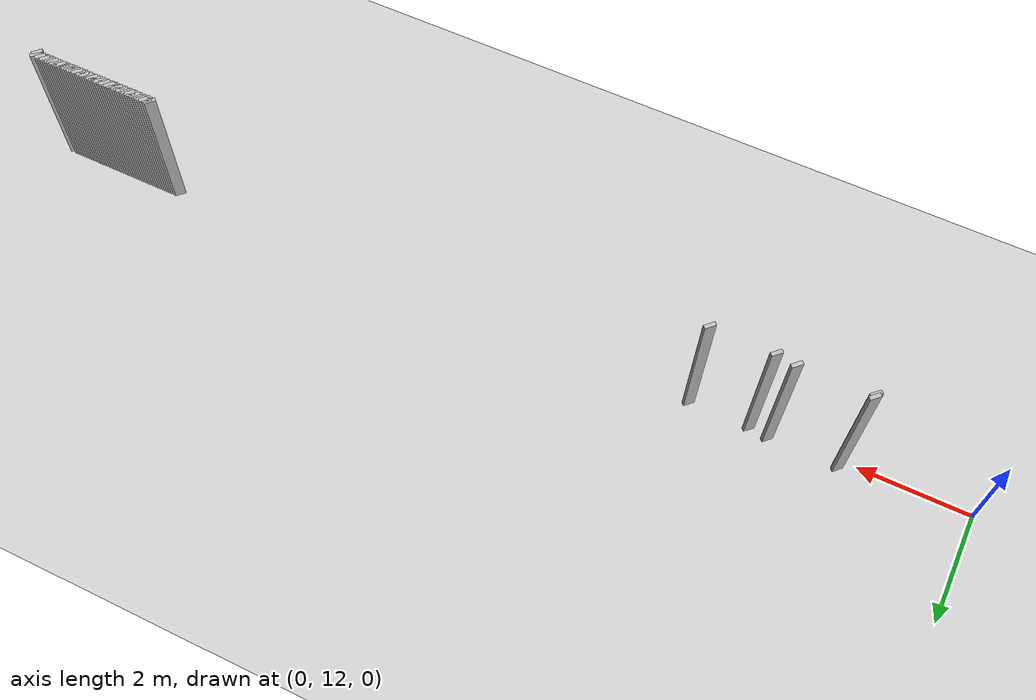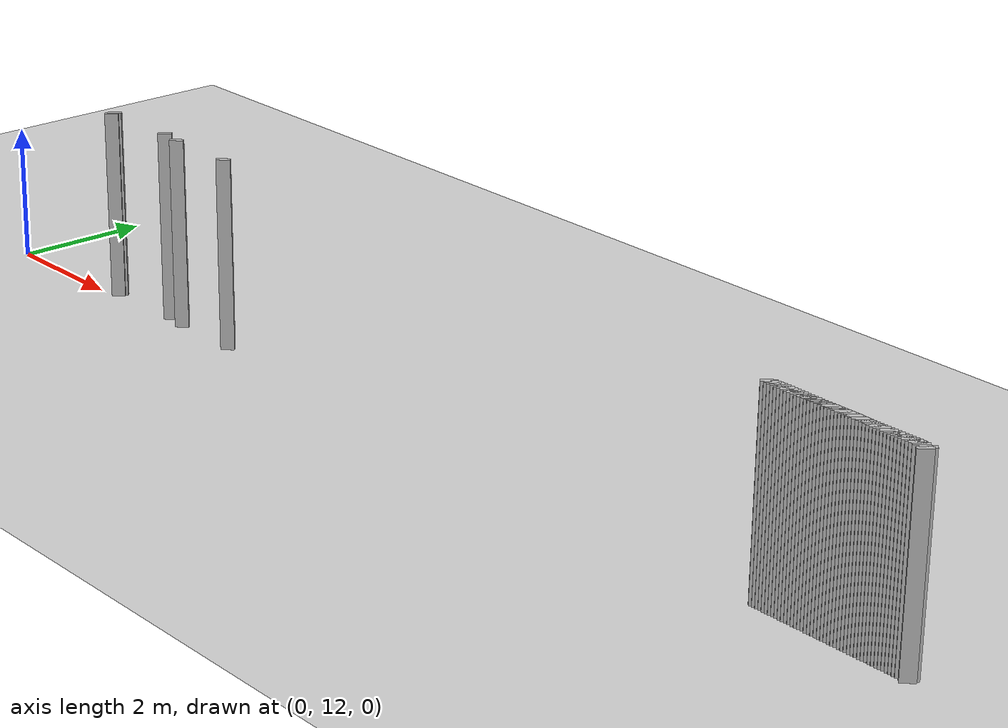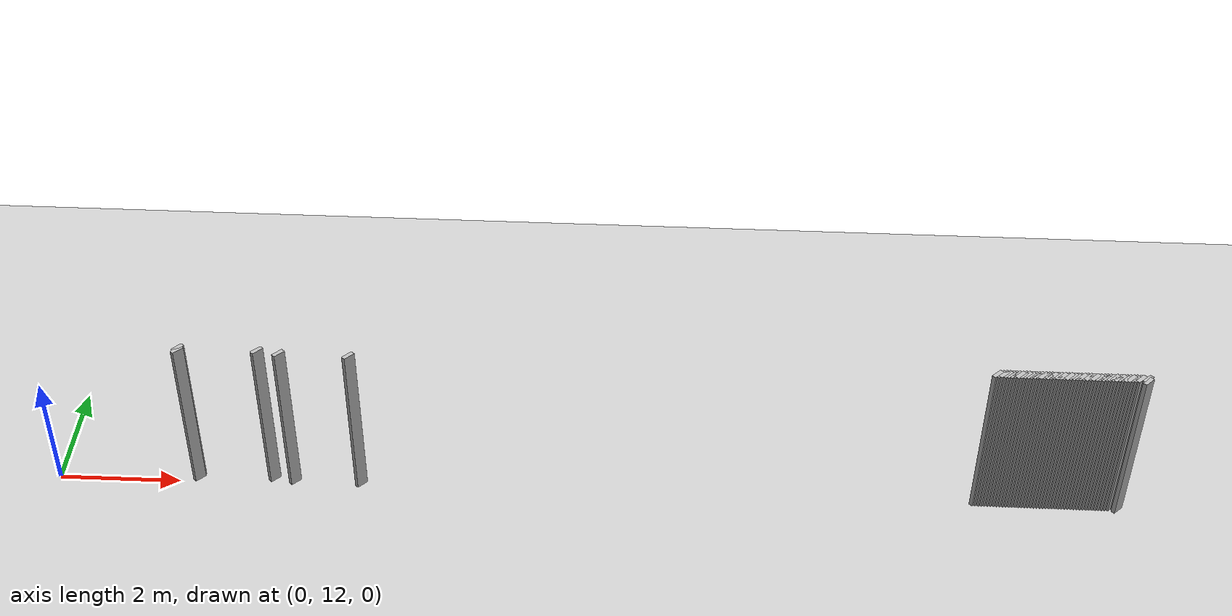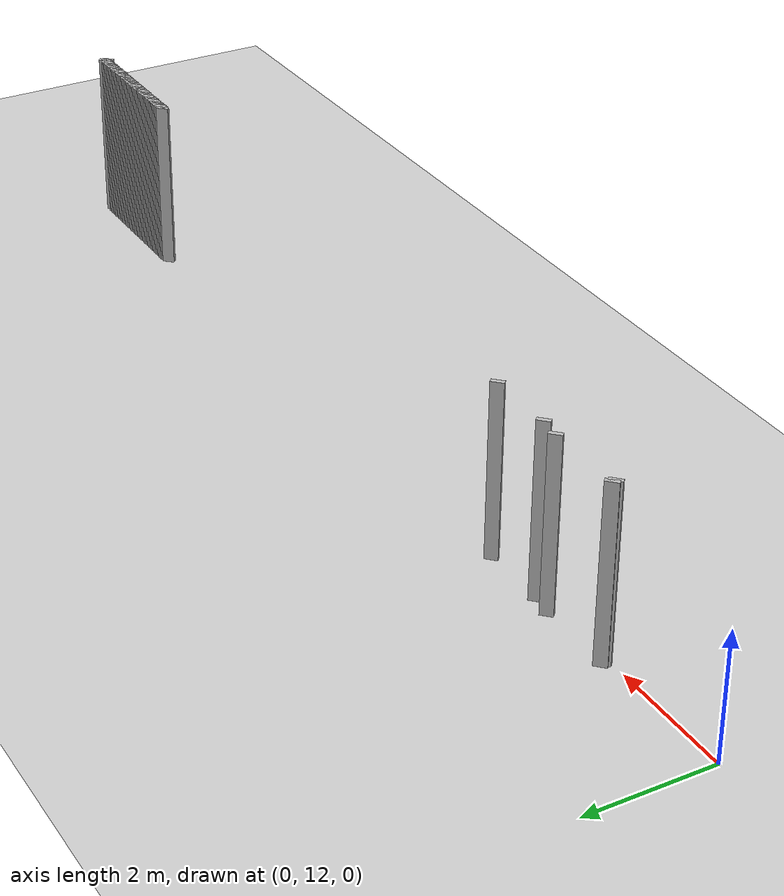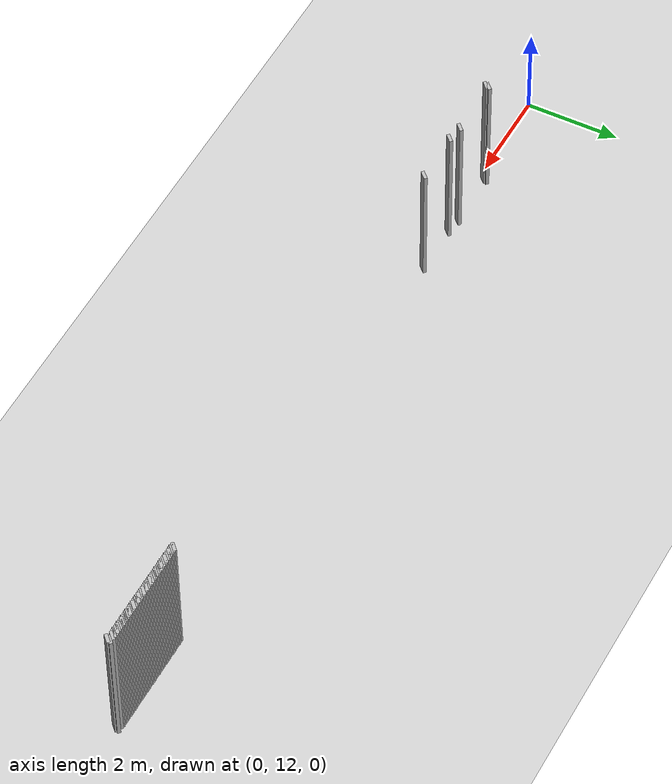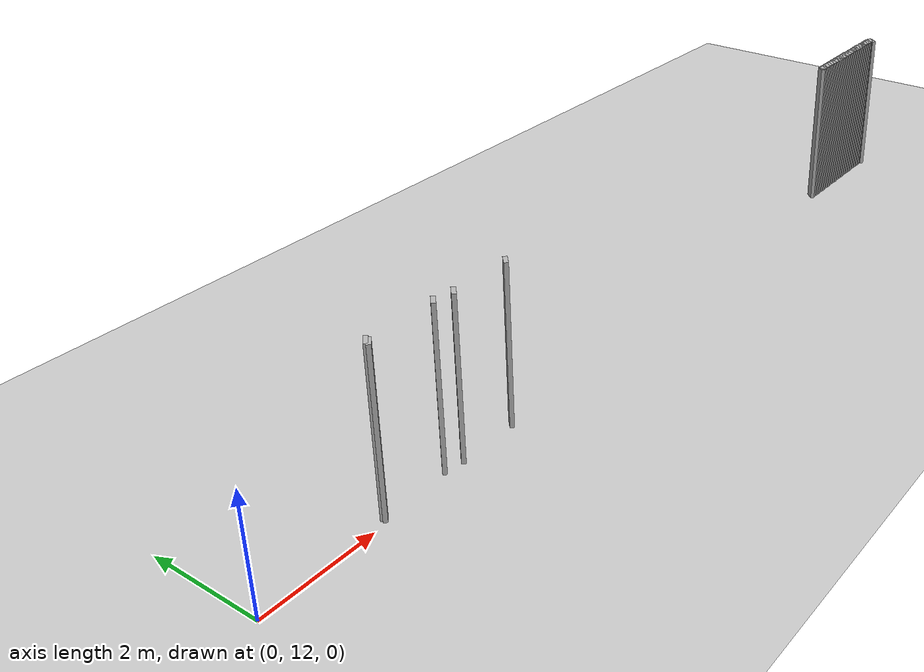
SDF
<sdf version="1.5">
 <world name="default">
  <include><uri>model://ground_plane</uri></include>
  <include><uri>model://sun</uri></include>
  <model name="grey_wall_1057">
   <static>1</static>
   <link name="link">
    <pose>15.100000000000001 12.200000000000001  1.4 0 0 -0.7853981633974483</pose>
    <collision name="collision">
     <geometry><box><size>0.07071067811865576 .2  2.8</size></box></geometry>
    </collision>
    <visual name="visual">
     <cast_shadows>0</cast_shadows>
     <geometry><box><size>0.07071067811865576 .2  2.8</size></box></geometry>
    </visual>
   </link>
  </model>
  <model name="grey_wall_1058">
   <static>1</static>
   <link name="link">
    <pose>15.15 12.200000000000001  1.4 0 0 -0.7853981633974483</pose>
    <collision name="collision">
     <geometry><box><size>0.07071067811865576 .2  2.8</size></box></geometry>
    </collision>
    <visual name="visual">
     <cast_shadows>0</cast_shadows>
     <geometry><box><size>0.07071067811865576 .2  2.8</size></box></geometry>
    </visual>
   </link>
  </model>
  <model name="grey_wall_1059">
   <static>1</static>
   <link name="link">
    <pose>15.200000000000001 12.200000000000001  1.4 0 0 -0.7853981633974483</pose>
    <collision name="collision">
     <geometry><box><size>0.07071067811865576 .2  2.8</size></box></geometry>
    </collision>
    <visual name="visual">
     <cast_shadows>0</cast_shadows>
     <geometry><box><size>0.07071067811865576 .2  2.8</size></box></geometry>
    </visual>
   </link>
  </model>
  <model name="grey_wall_1060">
   <static>1</static>
   <link name="link">
    <pose>15.25 12.200000000000001  1.4 0 0 -0.7853981633974483</pose>
    <collision name="collision">
     <geometry><box><size>0.07071067811865576 .2  2.8</size></box></geometry>
    </collision>
    <visual name="visual">
     <cast_shadows>0</cast_shadows>
     <geometry><box><size>0.07071067811865576 .2  2.8</size></box></geometry>
    </visual>
   </link>
  </model>
  <model name="grey_wall_1061">
   <static>1</static>
   <link name="link">
    <pose>15.3 12.200000000000001  1.4 0 0 -0.7853981633974483</pose>
    <collision name="collision">
     <geometry><box><size>0.07071067811865576 .2  2.8</size></box></geometry>
    </collision>
    <visual name="visual">
     <cast_shadows>0</cast_shadows>
     <geometry><box><size>0.07071067811865576 .2  2.8</size></box></geometry>
    </visual>
   </link>
  </model>
  <model name="grey_wall_1062">
   <static>1</static>
   <link name="link">
    <pose>15.350000000000001 12.200000000000001  1.4 0 0 -0.7853981633974483</pose>
    <collision name="collision">
     <geometry><box><size>0.07071067811865576 .2  2.8</size></box></geometry>
    </collision>
    <visual name="visual">
     <cast_shadows>0</cast_shadows>
     <geometry><box><size>0.07071067811865576 .2  2.8</size></box></geometry>
    </visual>
   </link>
  </model>
  <model name="grey_wall_1063">
   <static>1</static>
   <link name="link">
    <pose>15.4 12.200000000000001  1.4 0 0 -0.7853981633974483</pose>
    <collision name="collision">
     <geometry><box><size>0.07071067811865576 .2  2.8</size></box></geometry>
    </collision>
    <visual name="visual">
     <cast_shadows>0</cast_shadows>
     <geometry><box><size>0.07071067811865576 .2  2.8</size></box></geometry>
    </visual>
   </link>
  </model>
  <model name="grey_wall_1064">
   <static>1</static>
   <link name="link">
    <pose>15.450000000000001 12.200000000000001  1.4 0 0 -0.7853981633974483</pose>
    <collision name="collision">
     <geometry><box><size>0.07071067811865576 .2  2.8</size></box></geometry>
    </collision>
    <visual name="visual">
     <cast_shadows>0</cast_shadows>
     <geometry><box><size>0.07071067811865576 .2  2.8</size></box></geometry>
    </visual>
   </link>
  </model>
  <model name="grey_wall_1065">
   <static>1</static>
   <link name="link">
    <pose>15.5 12.200000000000001  1.4 0 0 -0.7853981633974483</pose>
    <collision name="collision">
     <geometry><box><size>0.07071067811865576 .2  2.8</size></box></geometry>
    </collision>
    <visual name="visual">
     <cast_shadows>0</cast_shadows>
     <geometry><box><size>0.07071067811865576 .2  2.8</size></box></geometry>
    </visual>
   </link>
  </model>
  <model name="grey_wall_1066">
   <static>1</static>
   <link name="link">
    <pose>15.55 12.200000000000001  1.4 0 0 -0.7853981633974483</pose>
    <collision name="collision">
     <geometry><box><size>0.07071067811865576 .2  2.8</size></box></geometry>
    </collision>
    <visual name="visual">
     <cast_shadows>0</cast_shadows>
     <geometry><box><size>0.07071067811865576 .2  2.8</size></box></geometry>
    </visual>
   </link>
  </model>
  <model name="grey_wall_1067">
   <static>1</static>
   <link name="link">
    <pose>15.600000000000001 12.200000000000001  1.4 0 0 -0.7853981633974483</pose>
    <collision name="collision">
     <geometry><box><size>0.07071067811865576 .2  2.8</size></box></geometry>
    </collision>
    <visual name="visual">
     <cast_shadows>0</cast_shadows>
     <geometry><box><size>0.07071067811865576 .2  2.8</size></box></geometry>
    </visual>
   </link>
  </model>
  <model name="grey_wall_1068">
   <static>1</static>
   <link name="link">
    <pose>15.65 12.200000000000001  1.4 0 0 -0.7853981633974483</pose>
    <collision name="collision">
     <geometry><box><size>0.07071067811865576 .2  2.8</size></box></geometry>
    </collision>
    <visual name="visual">
     <cast_shadows>0</cast_shadows>
     <geometry><box><size>0.07071067811865576 .2  2.8</size></box></geometry>
    </visual>
   </link>
  </model>
  <model name="grey_wall_1069">
   <static>1</static>
   <link name="link">
    <pose>15.700000000000001 12.200000000000001  1.4 0 0 -0.7853981633974483</pose>
    <collision name="collision">
     <geometry><box><size>0.07071067811865576 .2  2.8</size></box></geometry>
    </collision>
    <visual name="visual">
     <cast_shadows>0</cast_shadows>
     <geometry><box><size>0.07071067811865576 .2  2.8</size></box></geometry>
    </visual>
   </link>
  </model>
  <model name="grey_wall_1070">
   <static>1</static>
   <link name="link">
    <pose>15.75 12.200000000000001  1.4 0 0 -0.7853981633974483</pose>
    <collision name="collision">
     <geometry><box><size>0.07071067811865576 .2  2.8</size></box></geometry>
    </collision>
    <visual name="visual">
     <cast_shadows>0</cast_shadows>
     <geometry><box><size>0.07071067811865576 .2  2.8</size></box></geometry>
    </visual>
   </link>
  </model>
  <model name="grey_wall_1071">
   <static>1</static>
   <link name="link">
    <pose>15.8 12.200000000000001  1.4 0 0 -0.7853981633974483</pose>
    <collision name="collision">
     <geometry><box><size>0.07071067811865576 .2  2.8</size></box></geometry>
    </collision>
    <visual name="visual">
     <cast_shadows>0</cast_shadows>
     <geometry><box><size>0.07071067811865576 .2  2.8</size></box></geometry>
    </visual>
   </link>
  </model>
  <model name="grey_wall_1072">
   <static>1</static>
   <link name="link">
    <pose>15.850000000000001 12.200000000000001  1.4 0 0 -0.7853981633974483</pose>
    <collision name="collision">
     <geometry><box><size>0.07071067811865576 .2  2.8</size></box></geometry>
    </collision>
    <visual name="visual">
     <cast_shadows>0</cast_shadows>
     <geometry><box><size>0.07071067811865576 .2  2.8</size></box></geometry>
    </visual>
   </link>
  </model>
  <model name="grey_wall_1073">
   <static>1</static>
   <link name="link">
    <pose>15.9 12.200000000000001  1.4 0 0 -0.7853981633974483</pose>
    <collision name="collision">
     <geometry><box><size>0.07071067811865576 .2  2.8</size></box></geometry>
    </collision>
    <visual name="visual">
     <cast_shadows>0</cast_shadows>
     <geometry><box><size>0.07071067811865576 .2  2.8</size></box></geometry>
    </visual>
   </link>
  </model>
  <model name="grey_wall_1074">
   <static>1</static>
   <link name="link">
    <pose>15.950000000000001 12.200000000000001  1.4 0 0 -0.7853981633974483</pose>
    <collision name="collision">
     <geometry><box><size>0.07071067811865576 .2  2.8</size></box></geometry>
    </collision>
    <visual name="visual">
     <cast_shadows>0</cast_shadows>
     <geometry><box><size>0.07071067811865576 .2  2.8</size></box></geometry>
    </visual>
   </link>
  </model>
  <model name="grey_wall_1075">
   <static>1</static>
   <link name="link">
    <pose>16.0 12.200000000000001  1.4 0 0 -0.785398163397466</pose>
    <collision name="collision">
     <geometry><box><size>0.0707106781186545 .2  2.8</size></box></geometry>
    </collision>
    <visual name="visual">
     <cast_shadows>0</cast_shadows>
     <geometry><box><size>0.0707106781186545 .2  2.8</size></box></geometry>
    </visual>
   </link>
  </model>
  <model name="grey_wall_1076">
   <static>1</static>
   <link name="link">
    <pose>16.05 12.200000000000001  1.4 0 0 -0.7853981633974838</pose>
    <collision name="collision">
     <geometry><box><size>0.07071067811865325 .2  2.8</size></box></geometry>
    </collision>
    <visual name="visual">
     <cast_shadows>0</cast_shadows>
     <geometry><box><size>0.07071067811865325 .2  2.8</size></box></geometry>
    </visual>
   </link>
  </model>
  <model name="grey_wall_1077">
   <static>1</static>
   <link name="link">
    <pose>16.1 12.200000000000001  1.4 0 0 -0.7853981633974838</pose>
    <collision name="collision">
     <geometry><box><size>0.07071067811865325 .2  2.8</size></box></geometry>
    </collision>
    <visual name="visual">
     <cast_shadows>0</cast_shadows>
     <geometry><box><size>0.07071067811865325 .2  2.8</size></box></geometry>
    </visual>
   </link>
  </model>
  <model name="grey_wall_1078">
   <static>1</static>
   <link name="link">
    <pose>16.150000000000002 12.200000000000001  1.4 0 0 -0.7853981633974838</pose>
    <collision name="collision">
     <geometry><box><size>0.07071067811865325 .2  2.8</size></box></geometry>
    </collision>
    <visual name="visual">
     <cast_shadows>0</cast_shadows>
     <geometry><box><size>0.07071067811865325 .2  2.8</size></box></geometry>
    </visual>
   </link>
  </model>
  <model name="grey_wall_1079">
   <static>1</static>
   <link name="link">
    <pose>16.2 12.200000000000001  1.4 0 0 -0.7853981633974838</pose>
    <collision name="collision">
     <geometry><box><size>0.07071067811865325 .2  2.8</size></box></geometry>
    </collision>
    <visual name="visual">
     <cast_shadows>0</cast_shadows>
     <geometry><box><size>0.07071067811865325 .2  2.8</size></box></geometry>
    </visual>
   </link>
  </model>
  <model name="grey_wall_1080">
   <static>1</static>
   <link name="link">
    <pose>16.25 12.200000000000001  1.4 0 0 -0.7853981633974838</pose>
    <collision name="collision">
     <geometry><box><size>0.07071067811865325 .2  2.8</size></box></geometry>
    </collision>
    <visual name="visual">
     <cast_shadows>0</cast_shadows>
     <geometry><box><size>0.07071067811865325 .2  2.8</size></box></geometry>
    </visual>
   </link>
  </model>
  <model name="grey_wall_1081">
   <static>1</static>
   <link name="link">
    <pose>16.3 12.200000000000001  1.4 0 0 -0.7853981633974838</pose>
    <collision name="collision">
     <geometry><box><size>0.07071067811865325 .2  2.8</size></box></geometry>
    </collision>
    <visual name="visual">
     <cast_shadows>0</cast_shadows>
     <geometry><box><size>0.07071067811865325 .2  2.8</size></box></geometry>
    </visual>
   </link>
  </model>
  <model name="grey_wall_1082">
   <static>1</static>
   <link name="link">
    <pose>16.35 12.200000000000001  1.4 0 0 -0.7853981633974838</pose>
    <collision name="collision">
     <geometry><box><size>0.07071067811865325 .2  2.8</size></box></geometry>
    </collision>
    <visual name="visual">
     <cast_shadows>0</cast_shadows>
     <geometry><box><size>0.07071067811865325 .2  2.8</size></box></geometry>
    </visual>
   </link>
  </model>
  <model name="grey_wall_1083">
   <static>1</static>
   <link name="link">
    <pose>16.400000000000002 12.200000000000001  1.4 0 0 -0.7853981633974838</pose>
    <collision name="collision">
     <geometry><box><size>0.07071067811865325 .2  2.8</size></box></geometry>
    </collision>
    <visual name="visual">
     <cast_shadows>0</cast_shadows>
     <geometry><box><size>0.07071067811865325 .2  2.8</size></box></geometry>
    </visual>
   </link>
  </model>
  <model name="grey_wall_1084">
   <static>1</static>
   <link name="link">
    <pose>16.45 12.200000000000001  1.4 0 0 -0.7853981633974838</pose>
    <collision name="collision">
     <geometry><box><size>0.07071067811865325 .2  2.8</size></box></geometry>
    </collision>
    <visual name="visual">
     <cast_shadows>0</cast_shadows>
     <geometry><box><size>0.07071067811865325 .2  2.8</size></box></geometry>
    </visual>
   </link>
  </model>
  <model name="grey_wall_1085">
   <static>1</static>
   <link name="link">
    <pose>16.5 12.200000000000001  1.4 0 0 -0.7853981633974838</pose>
    <collision name="collision">
     <geometry><box><size>0.07071067811865325 .2  2.8</size></box></geometry>
    </collision>
    <visual name="visual">
     <cast_shadows>0</cast_shadows>
     <geometry><box><size>0.07071067811865325 .2  2.8</size></box></geometry>
    </visual>
   </link>
  </model>
  <model name="grey_wall_1086">
   <static>1</static>
   <link name="link">
    <pose>16.55 12.200000000000001  1.4 0 0 -0.7853981633974838</pose>
    <collision name="collision">
     <geometry><box><size>0.07071067811865325 .2  2.8</size></box></geometry>
    </collision>
    <visual name="visual">
     <cast_shadows>0</cast_shadows>
     <geometry><box><size>0.07071067811865325 .2  2.8</size></box></geometry>
    </visual>
   </link>
  </model>
  <model name="grey_wall_1087">
   <static>1</static>
   <link name="link">
    <pose>16.6 12.200000000000001  1.4 0 0 -0.7853981633974838</pose>
    <collision name="collision">
     <geometry><box><size>0.07071067811865325 .2  2.8</size></box></geometry>
    </collision>
    <visual name="visual">
     <cast_shadows>0</cast_shadows>
     <geometry><box><size>0.07071067811865325 .2  2.8</size></box></geometry>
    </visual>
   </link>
  </model>
  <model name="grey_wall_1088">
   <static>1</static>
   <link name="link">
    <pose>16.650000000000002 12.200000000000001  1.4 0 0 -0.7853981633974838</pose>
    <collision name="collision">
     <geometry><box><size>0.07071067811865325 .2  2.8</size></box></geometry>
    </collision>
    <visual name="visual">
     <cast_shadows>0</cast_shadows>
     <geometry><box><size>0.07071067811865325 .2  2.8</size></box></geometry>
    </visual>
   </link>
  </model>
  <model name="grey_wall_1089">
   <static>1</static>
   <link name="link">
    <pose>16.7 12.200000000000001  1.4 0 0 -0.7853981633974838</pose>
    <collision name="collision">
     <geometry><box><size>0.07071067811865325 .2  2.8</size></box></geometry>
    </collision>
    <visual name="visual">
     <cast_shadows>0</cast_shadows>
     <geometry><box><size>0.07071067811865325 .2  2.8</size></box></geometry>
    </visual>
   </link>
  </model>
  <model name="grey_wall_1090">
   <static>1</static>
   <link name="link">
    <pose>16.75 12.200000000000001  1.4 0 0 -0.7853981633974838</pose>
    <collision name="collision">
     <geometry><box><size>0.07071067811865325 .2  2.8</size></box></geometry>
    </collision>
    <visual name="visual">
     <cast_shadows>0</cast_shadows>
     <geometry><box><size>0.07071067811865325 .2  2.8</size></box></geometry>
    </visual>
   </link>
  </model>
  <model name="grey_wall_1091">
   <static>1</static>
   <link name="link">
    <pose>16.8 12.200000000000001  1.4 0 0 -0.7853981633974838</pose>
    <collision name="collision">
     <geometry><box><size>0.07071067811865325 .2  2.8</size></box></geometry>
    </collision>
    <visual name="visual">
     <cast_shadows>0</cast_shadows>
     <geometry><box><size>0.07071067811865325 .2  2.8</size></box></geometry>
    </visual>
   </link>
  </model>
  <model name="grey_wall_1092">
   <static>1</static>
   <link name="link">
    <pose>16.85 12.200000000000001  1.4 0 0 -0.7853981633974838</pose>
    <collision name="collision">
     <geometry><box><size>0.07071067811865325 .2  2.8</size></box></geometry>
    </collision>
    <visual name="visual">
     <cast_shadows>0</cast_shadows>
     <geometry><box><size>0.07071067811865325 .2  2.8</size></box></geometry>
    </visual>
   </link>
  </model>
  <model name="grey_wall_1093">
   <static>1</static>
   <link name="link">
    <pose>16.900000000000002 12.200000000000001  1.4 0 0 -0.7853981633974838</pose>
    <collision name="collision">
     <geometry><box><size>0.07071067811865325 .2  2.8</size></box></geometry>
    </collision>
    <visual name="visual">
     <cast_shadows>0</cast_shadows>
     <geometry><box><size>0.07071067811865325 .2  2.8</size></box></geometry>
    </visual>
   </link>
  </model>
  <model name="grey_wall_1094">
   <static>1</static>
   <link name="link">
    <pose>16.95 12.200000000000001  1.4 0 0 -0.7853981633974838</pose>
    <collision name="collision">
     <geometry><box><size>0.07071067811865325 .2  2.8</size></box></geometry>
    </collision>
    <visual name="visual">
     <cast_shadows>0</cast_shadows>
     <geometry><box><size>0.07071067811865325 .2  2.8</size></box></geometry>
    </visual>
   </link>
  </model>
  <model name="grey_wall_1095">
   <static>1</static>
   <link name="link">
    <pose>17.0 12.200000000000001  1.4 0 0 -0.7853981633974838</pose>
    <collision name="collision">
     <geometry><box><size>0.07071067811865325 .2  2.8</size></box></geometry>
    </collision>
    <visual name="visual">
     <cast_shadows>0</cast_shadows>
     <geometry><box><size>0.07071067811865325 .2  2.8</size></box></geometry>
    </visual>
   </link>
  </model>
  <model name="grey_wall_1096">
   <static>1</static>
   <link name="link">
    <pose>17.05 12.200000000000001  1.4 0 0 -0.7853981633974838</pose>
    <collision name="collision">
     <geometry><box><size>0.07071067811865325 .2  2.8</size></box></geometry>
    </collision>
    <visual name="visual">
     <cast_shadows>0</cast_shadows>
     <geometry><box><size>0.07071067811865325 .2  2.8</size></box></geometry>
    </visual>
   </link>
  </model>
  <model name="grey_wall_1097">
   <static>1</static>
   <link name="link">
    <pose>17.1 12.200000000000001  1.4 0 0 -0.7853981633974838</pose>
    <collision name="collision">
     <geometry><box><size>0.07071067811865325 .2  2.8</size></box></geometry>
    </collision>
    <visual name="visual">
     <cast_shadows>0</cast_shadows>
     <geometry><box><size>0.07071067811865325 .2  2.8</size></box></geometry>
    </visual>
   </link>
  </model>
  <model name="grey_wall_1098">
   <static>1</static>
   <link name="link">
    <pose>17.150000000000002 12.200000000000001  1.4 0 0 -0.7853981633974838</pose>
    <collision name="collision">
     <geometry><box><size>0.07071067811865325 .2  2.8</size></box></geometry>
    </collision>
    <visual name="visual">
     <cast_shadows>0</cast_shadows>
     <geometry><box><size>0.07071067811865325 .2  2.8</size></box></geometry>
    </visual>
   </link>
  </model>
  <model name="grey_wall_1099">
   <static>1</static>
   <link name="link">
    <pose>17.2 12.200000000000001  1.4 0 0 -0.7853981633974838</pose>
    <collision name="collision">
     <geometry><box><size>0.07071067811865325 .2  2.8</size></box></geometry>
    </collision>
    <visual name="visual">
     <cast_shadows>0</cast_shadows>
     <geometry><box><size>0.07071067811865325 .2  2.8</size></box></geometry>
    </visual>
   </link>
  </model>
  <model name="grey_wall_1100">
   <static>1</static>
   <link name="link">
    <pose>17.25 12.200000000000001  1.4 0 0 -0.7853981633974838</pose>
    <collision name="collision">
     <geometry><box><size>0.07071067811865325 .2  2.8</size></box></geometry>
    </collision>
    <visual name="visual">
     <cast_shadows>0</cast_shadows>
     <geometry><box><size>0.07071067811865325 .2  2.8</size></box></geometry>
    </visual>
   </link>
  </model>
  <model name="grey_wall_1101">
   <static>1</static>
   <link name="link">
    <pose>17.3 12.200000000000001  1.4 0 0 -0.7853981633974838</pose>
    <collision name="collision">
     <geometry><box><size>0.07071067811865325 .2  2.8</size></box></geometry>
    </collision>
    <visual name="visual">
     <cast_shadows>0</cast_shadows>
     <geometry><box><size>0.07071067811865325 .2  2.8</size></box></geometry>
    </visual>
   </link>
  </model>
  <model name="grey_wall_1102">
   <static>1</static>
   <link name="link">
    <pose>17.400000000000002 12.200000000000001  1.4 0 0 -0.7853981633974838</pose>
    <collision name="collision">
     <geometry><box><size>0.07071067811865325 .2  2.8</size></box></geometry>
    </collision>
    <visual name="visual">
     <cast_shadows>0</cast_shadows>
     <geometry><box><size>0.07071067811865325 .2  2.8</size></box></geometry>
    </visual>
   </link>
  </model>
  <model name="grey_wall_1103">
   <static>1</static>
   <link name="link">
    <pose>2.3000000000000003 12.15  1.4 0 0 -0.7853981633974572</pose>
    <collision name="collision">
     <geometry><box><size>0.07071067811865513 .2  2.8</size></box></geometry>
    </collision>
    <visual name="visual">
     <cast_shadows>0</cast_shadows>
     <geometry><box><size>0.07071067811865513 .2  2.8</size></box></geometry>
    </visual>
   </link>
  </model>
  <model name="grey_wall_1104">
   <static>1</static>
   <link name="link">
    <pose>3.5500000000000003 12.15  1.4 0 0 -0.7853981633974572</pose>
    <collision name="collision">
     <geometry><box><size>0.07071067811865513 .2  2.8</size></box></geometry>
    </collision>
    <visual name="visual">
     <cast_shadows>0</cast_shadows>
     <geometry><box><size>0.07071067811865513 .2  2.8</size></box></geometry>
    </visual>
   </link>
  </model>
  <model name="grey_wall_1105">
   <static>1</static>
   <link name="link">
    <pose>17.400000000000002 12.15  1.4 0 0 -0.7853981633974838</pose>
    <collision name="collision">
     <geometry><box><size>0.07071067811865325 .2  2.8</size></box></geometry>
    </collision>
    <visual name="visual">
     <cast_shadows>0</cast_shadows>
     <geometry><box><size>0.07071067811865325 .2  2.8</size></box></geometry>
    </visual>
   </link>
  </model>
  <model name="grey_wall_1106">
   <static>1</static>
   <link name="link">
    <pose>2.3000000000000003 12.100000000000001  1.4 0 0 -0.7853981633974572</pose>
    <collision name="collision">
     <geometry><box><size>0.07071067811865513 .2  2.8</size></box></geometry>
    </collision>
    <visual name="visual">
     <cast_shadows>0</cast_shadows>
     <geometry><box><size>0.07071067811865513 .2  2.8</size></box></geometry>
    </visual>
   </link>
  </model>
  <model name="grey_wall_1107">
   <static>1</static>
   <link name="link">
    <pose>3.9000000000000004 12.100000000000001  1.4 0 0 -0.7853981633974572</pose>
    <collision name="collision">
     <geometry><box><size>0.07071067811865513 .2  2.8</size></box></geometry>
    </collision>
    <visual name="visual">
     <cast_shadows>0</cast_shadows>
     <geometry><box><size>0.07071067811865513 .2  2.8</size></box></geometry>
    </visual>
   </link>
  </model>
  <model name="grey_wall_1108">
   <static>1</static>
   <link name="link">
    <pose>5.0 12.100000000000001  1.4 0 0 -0.7853981633974483</pose>
    <collision name="collision">
     <geometry><box><size>0.07071067811865576 .2  2.8</size></box></geometry>
    </collision>
    <visual name="visual">
     <cast_shadows>0</cast_shadows>
     <geometry><box><size>0.07071067811865576 .2  2.8</size></box></geometry>
    </visual>
   </link>
  </model>
 </world>
</sdf>
